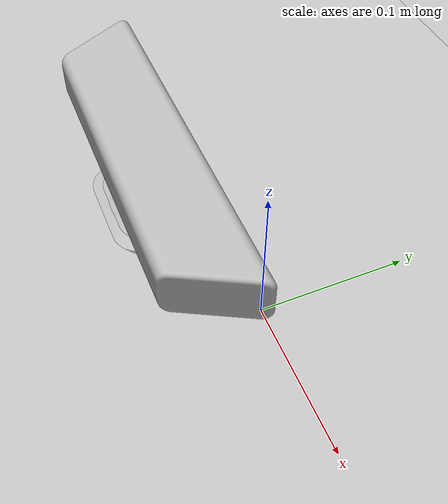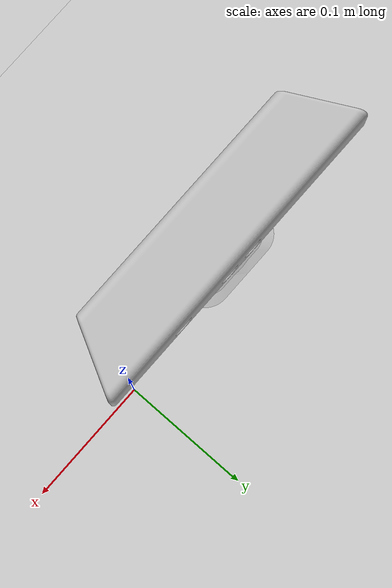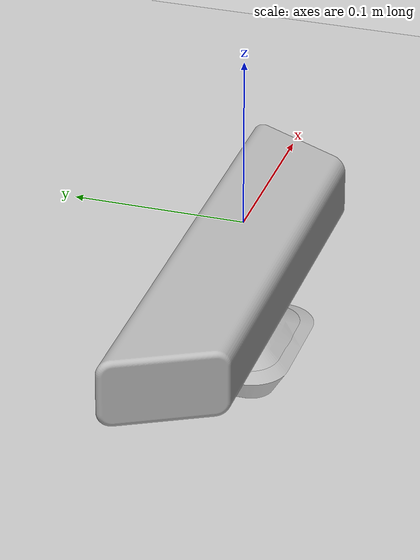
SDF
<sdf version="1.6">
 <world name="default">
  <light name="sun" type="directional">
   <pose>0 0 10 0 -0 0</pose>
   <diffuse>0.8 0.8 0.8 1</diffuse>
   <specular>0.2 0.2 0.2 1</specular>
   <attenuation>
    <range>1000</range>
    <constant>0.9</constant>
    <linear>0.01</linear>
    <quadratic>0.001</quadratic>
   </attenuation>
   <direction>-0.5 0.1 -0.9</direction>
  </light>
  <model name="ground_plane">
   <static>1</static>
   <link name="link">
    <collision name="collision">
     <geometry><plane><normal>0 0 1</normal><size>100 100</size></plane></geometry>
     <surface><friction><ode><mu>100</mu><mu2>50</mu2></ode></friction></surface>
    </collision>
    <visual name="visual">
     <cast_shadows>0</cast_shadows>
     <geometry><plane><normal>0 0 1</normal><size>100 100</size></plane></geometry>
     <material>
      <script><uri>file://media/materials/scripts/gazebo.material</uri><name>Gazebo/Grey</name></script>
     </material>
    </visual>
   </link>
  </model>
  <gravity>0 0 0</gravity>
  <magnetic_field>6e-06 2.3e-05 -4.2e-05</magnetic_field>
  <atmosphere type="adiabatic"/>
  <physics name="default_physics" default="0" type="ode">
   <max_step_size>0.001</max_step_size>
   <real_time_factor>1</real_time_factor>
   <real_time_update_rate>1000</real_time_update_rate>
  </physics>
  <scene><ambient>0.4 0.4 0.4 1</ambient><background>0.7 0.7 0.7 1</background><shadows>1</shadows></scene>
  <audio><device>default</device></audio>
  <spherical_coordinates>
   <surface_model>EARTH_WGS84</surface_model>
   <latitude_deg>0</latitude_deg>
   <longitude_deg>0</longitude_deg>
   <elevation>0</elevation>
   <heading_deg>0</heading_deg>
  </spherical_coordinates>
  <model name="mobile_base">
   <link name="base_link">
    <inertial>
     <pose>-0.118 0 0.271 0 -0 0</pose>
     <mass>0.564</mass>
     <inertia>
      <ixx>0.00388124</ixx>
      <ixy>0</ixy>
      <ixz>6.93889e-18</ixz>
      <iyy>0.00049894</iyy>
      <iyz>0</iyz>
      <izz>0.00387926</izz>
     </inertia>
    </inertial>
    <collision name="base_link_fixed_joint_lump__camera_link_collision">
     <pose>-0.118 0 0.271 0 -0 0</pose>
     <geometry><box><size>0.07271 0.27794 0.073</size></box></geometry>
    </collision>
    <visual name="base_link_fixed_joint_lump__camera_link_visual">
     <pose>-0.118 0 0.271 0 -0 1.5708</pose>
     <geometry>
      <mesh>
       <scale>1 1 1</scale>
       <uri>/home/zhjd/ws_turtlebot_custom/src/turtlebot/turtlebot_description/meshes/sensors/kinect.dae</uri>
      </mesh>
     </geometry>
     <material><script><uri>__default__</uri><name>__default__</name></script></material>
    </visual>
    <sensor name="camera" type="depth">
     <always_on>1</always_on>
     <update_rate>20</update_rate>
     <camera name="__default__">
      <horizontal_fov>1.0472</horizontal_fov>
      <image><format>B8G8R8</format><width>640</width><height>480</height></image>
      <clip><near>0.05</near><far>8</far></clip>
     </camera>
     <plugin name="kinect_camera_controller" filename="libgazebo_ros_openni_kinect.so">
      <cameraName>camera</cameraName>
      <alwaysOn>1</alwaysOn>
      <updateRate>10</updateRate>
      <imageTopicName>rgb/image_raw</imageTopicName>
      <depthImageTopicName>depth/image_raw</depthImageTopicName>
      <pointCloudTopicName>depth/points</pointCloudTopicName>
      <cameraInfoTopicName>rgb/camera_info</cameraInfoTopicName>
      <depthImageCameraInfoTopicName>depth/camera_info</depthImageCameraInfoTopicName>
      <frameName>camera_depth_optical_frame</frameName>
      <baseline>0.1</baseline>
      <distortion_k1>0.0</distortion_k1>
      <distortion_k2>0.0</distortion_k2>
      <distortion_k3>0.0</distortion_k3>
      <distortion_t1>0.0</distortion_t1>
      <distortion_t2>0.0</distortion_t2>
      <pointCloudCutoff>0.4</pointCloudCutoff>
      <robotNamespace>/</robotNamespace>
     </plugin>
     <pose>-0.118 0 0.271 0 -0 0</pose>
    </sensor>
   </link>
   <pose>0 0 -0.2345 0 -0 0</pose>
  </model>
 </world>
</sdf>
